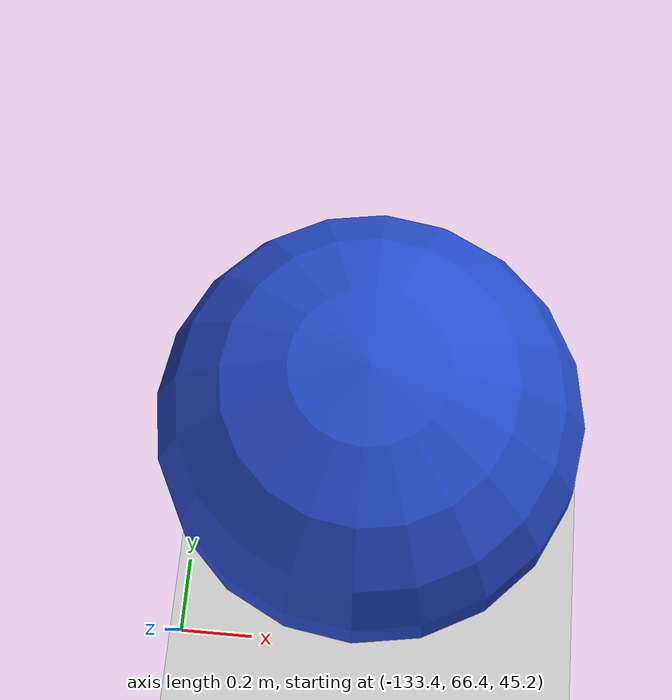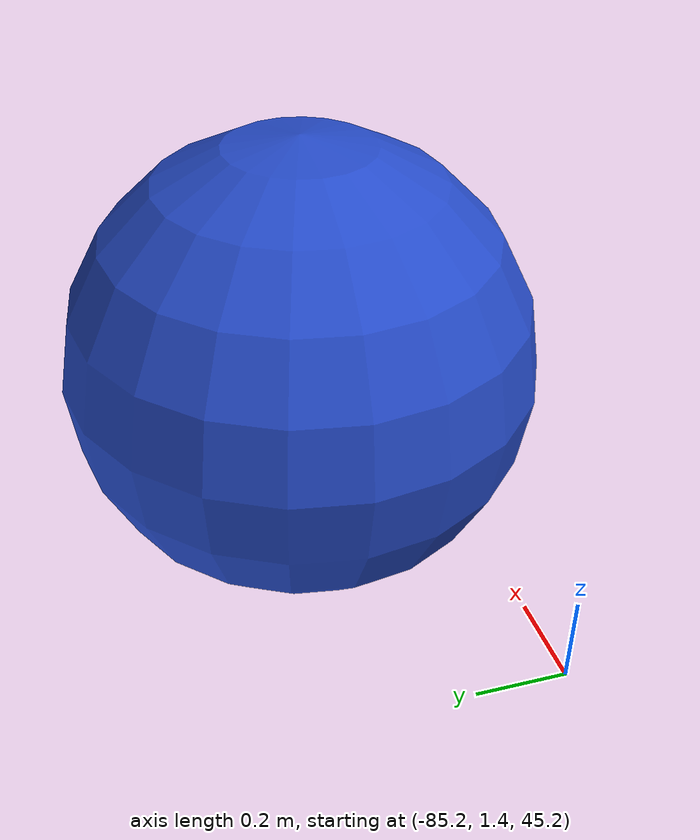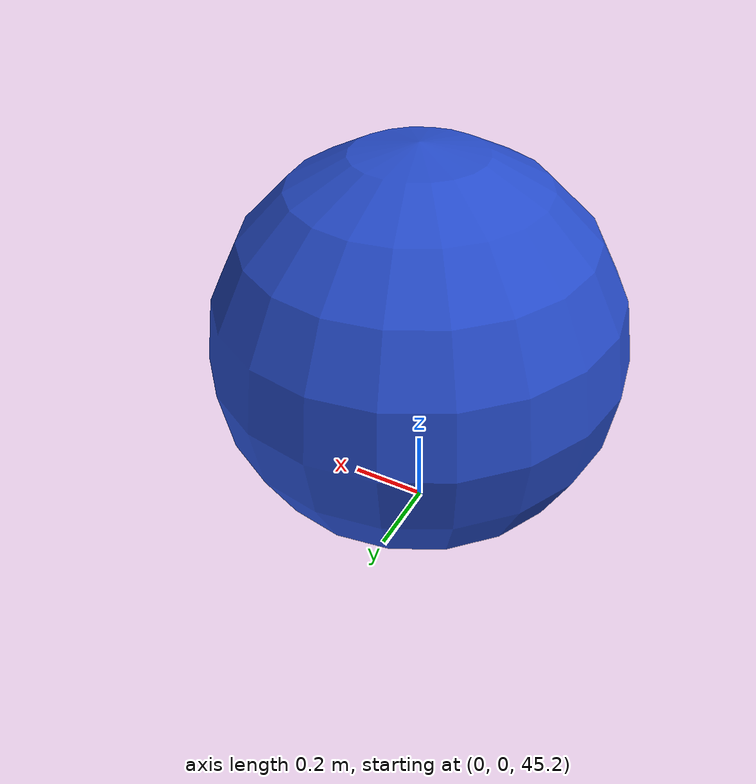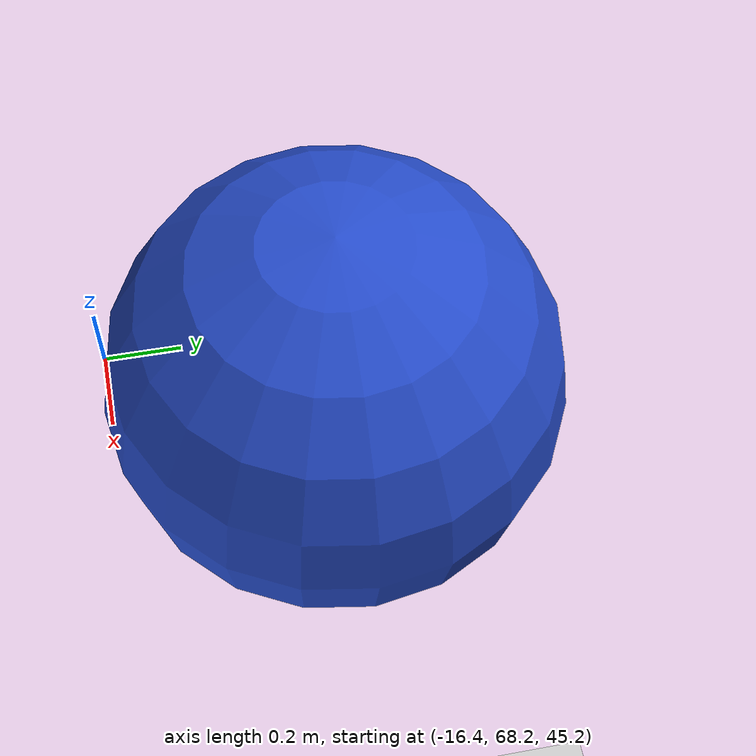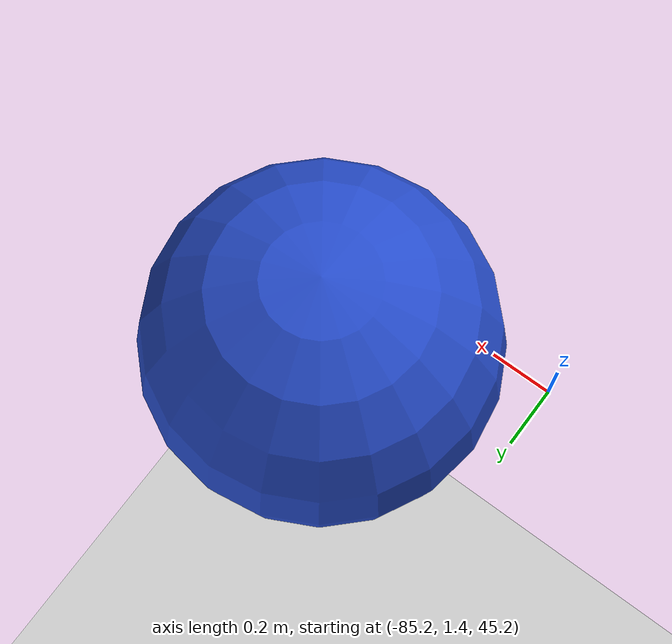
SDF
<sdf version='1.4'>
  <world name='default'>

    <light name='sun' type='directional'>
      <cast_shadows>1</cast_shadows>
      <pose>0 0 500 0 -0 0</pose>
      <diffuse>0.8 0.8 0.8 1</diffuse>
      <specular>0.2 0.2 0.2 1</specular>
      <attenuation>
        <range>1000</range>
        <constant>0.9</constant>
        <linear>0.01</linear>
        <quadratic>0.001</quadratic>
      </attenuation>
      <direction>-0.5 0.1 -0.9</direction>
    </light>

    <model name='ground_plane'>
      <static>1</static>
      <link name='link'>
        <collision name='collision'>
          <geometry>
            <plane>
              <normal>0 0 1</normal>
              <size>100 100</size>
            </plane>
          </geometry>
          <surface>
            <friction>
              <ode>
                <mu>100</mu>
                <mu2>50</mu2>
              </ode>
              <torsional>
                <ode/>
              </torsional>
            </friction>
            <contact>
              <ode/>
            </contact>
            <bounce/>
          </surface>
          <max_contacts>10</max_contacts>
        </collision>
        <visual name='visual'>
          <cast_shadows>0</cast_shadows>
          <geometry>
            <plane>
              <normal>0 0 1</normal>
              <size>1000 1000</size>
            </plane>
          </geometry>
          <material>
            <script>
              <uri>file://media/materials/scripts/gazebo.material</uri>
              <name>Gazebo/Grey</name>
            </script>
          </material>
        </visual>
        <self_collide>0</self_collide>
        <kinematic>0</kinematic>
        <gravity>1</gravity>
      </link>
    </model>

    <model name='waypoint_1'>
      <pose frame=''>-84.65754257999417 1.8205820672444881 45.72 0 -0 0</pose>
      <link name='link'>
        <inertial>
          <mass>1</mass>
          <inertia>
            <ixx>0.1</ixx>
            <ixy>0</ixy>
            <ixz>0</ixz>
            <iyy>0.1</iyy>
            <iyz>0</iyz>
            <izz>0.1</izz>
          </inertia>
        </inertial>
        <collision name='collision'>
          <geometry>
            <sphere>
              <radius>0.25</radius>
            </sphere>
          </geometry>
          <max_contacts>0</max_contacts>
          <surface>
            <contact>
              <ode/>
            </contact>
            <bounce/>
            <friction>
              <torsional>
                <ode/>
              </torsional>
              <ode/>
            </friction>
          </surface>
        </collision>
        <visual name='visual'>
          <geometry>
            <sphere>
              <radius>0.5</radius>
            </sphere>
          </geometry>
          <material>
            <script>
              <name>Gazebo/Blue</name>
              <uri>file://media/materials/scripts/gazebo.material</uri>
            </script>
          </material>
        </visual>
        <self_collide>0</self_collide>
        <kinematic>0</kinematic>
        <gravity>0</gravity>
      </link>
    </model>

    <model name='waypoint_2'>
      <pose frame=''>-15.930109956726023 68.726973038479429 45.72 0 -0 0</pose>
      <link name='link'>
        <inertial>
          <mass>1</mass>
          <inertia>
            <ixx>0.1</ixx>
            <ixy>0</ixy>
            <ixz>0</ixz>
            <iyy>0.1</iyy>
            <iyz>0</iyz>
            <izz>0.1</izz>
          </inertia>
        </inertial>
        <collision name='collision'>
          <geometry>
            <sphere>
              <radius>0.25</radius>
            </sphere>
          </geometry>
          <max_contacts>0</max_contacts>
          <surface>
            <contact>
              <ode/>
            </contact>
            <bounce/>
            <friction>
              <torsional>
                <ode/>
              </torsional>
              <ode/>
            </friction>
          </surface>
        </collision>
        <visual name='visual'>
          <geometry>
            <sphere>
              <radius>0.5</radius>
            </sphere>
          </geometry>
          <material>
            <script>
              <name>Gazebo/Blue</name>
              <uri>file://media/materials/scripts/gazebo.material</uri>
            </script>
          </material>
        </visual>
        <self_collide>0</self_collide>
        <kinematic>0</kinematic>
        <gravity>0</gravity>
      </link>
    </model>

    <model name='waypoint_3'>
      <pose frame=''>-132.903665156 66.9063909712 45.72 0 -0 0</pose>
      <link name='link'>
        <inertial>
          <mass>1</mass>
          <inertia>
            <ixx>0.1</ixx>
            <ixy>0</ixy>
            <ixz>0</ixz>
            <iyy>0.1</iyy>
            <iyz>0</iyz>
            <izz>0.1</izz>
          </inertia>
        </inertial>
        <collision name='collision'>
          <geometry>
            <sphere>
              <radius>0.25</radius>
            </sphere>
          </geometry>
          <max_contacts>0</max_contacts>
          <surface>
            <contact>
              <ode/>
            </contact>
            <bounce/>
            <friction>
              <torsional>
                <ode/>
              </torsional>
              <ode/>
            </friction>
          </surface>
        </collision>
        <visual name='visual'>
          <geometry>
            <sphere>
              <radius>0.5</radius>
            </sphere>
          </geometry>
          <material>
            <script>
              <name>Gazebo/Blue</name>
              <uri>file://media/materials/scripts/gazebo.material</uri>
            </script>
          </material>
        </visual>
        <self_collide>0</self_collide>
        <kinematic>0</kinematic>
        <gravity>0</gravity>
      </link>
    </model>

    <model name='waypoint_4'>
      <pose frame=''>0.0 0.0 45.72 0 -0 0</pose>
      <link name='link'>
        <inertial>
          <mass>1</mass>
          <inertia>
            <ixx>0.1</ixx>
            <ixy>0</ixy>
            <ixz>0</ixz>
            <iyy>0.1</iyy>
            <iyz>0</iyz>
            <izz>0.1</izz>
          </inertia>
        </inertial>
        <collision name='collision'>
          <geometry>
            <sphere>
              <radius>0.25</radius>
            </sphere>
          </geometry>
          <max_contacts>0</max_contacts>
          <surface>
            <contact>
              <ode/>
            </contact>
            <bounce/>
            <friction>
              <torsional>
                <ode/>
              </torsional>
              <ode/>
            </friction>
          </surface>
        </collision>
        <visual name='visual'>
          <geometry>
            <sphere>
              <radius>0.5</radius>
            </sphere>
          </geometry>
          <material>
            <script>
              <name>Gazebo/Blue</name>
              <uri>file://media/materials/scripts/gazebo.material</uri>
            </script>
          </material>
        </visual>
        <self_collide>0</self_collide>
        <kinematic>0</kinematic>
        <gravity>0</gravity>
      </link>
    </model>

    <gravity>0 0 -9.8</gravity>
    <physics name='default_physics' default='0' type='ode'>
      <max_step_size>0.001</max_step_size>
      <real_time_factor>1</real_time_factor>
      <real_time_update_rate>100</real_time_update_rate>
    </physics>

    <scene>
      <ambient>0.4 0.4 0.4 1</ambient>
      <background>0.7 0.7 0.7 1</background>
      <shadows>1</shadows>
    </scene>
    <spherical_coordinates>
      <surface_model>EARTH_WGS84</surface_model>
      <latitude_deg>0</latitude_deg>
      <longitude_deg>0</longitude_deg>
      <elevation>0</elevation>
      <heading_deg>0</heading_deg>
    </spherical_coordinates>

    <gui fullscreen='0'>
      <camera name='user_camera'>
        <pose>-10 -7.99288 80.8348 1.15202e-17 1.41964 0.02019</pose>
        <view_controller>orbit</view_controller>
      </camera>
    </gui>
  </world>
</sdf>
